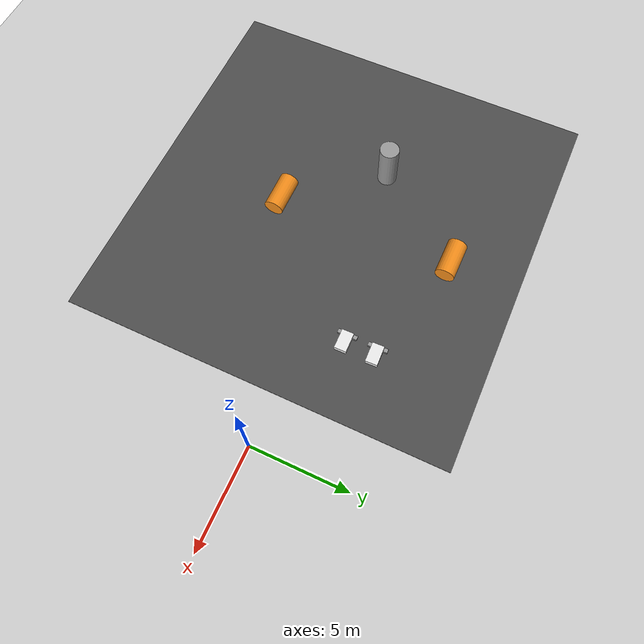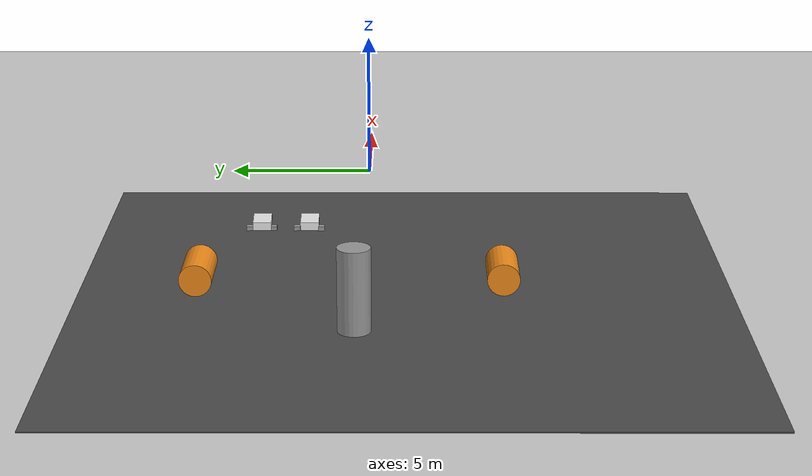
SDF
<sdf version="1.7">
 <world name="default">
  <model name="ground_plane">
   <static>1</static>
   <link name="link">
    <collision name="collision">
     <geometry><plane><normal>0 0 1</normal><size>100 100</size></plane></geometry>
     <surface><friction><ode><mu>100</mu><mu2>50</mu2></ode></friction></surface>
    </collision>
    <visual name="visual">
     <cast_shadows>0</cast_shadows>
     <geometry><plane><normal>0 0 1</normal><size>100 100</size></plane></geometry>
     <material>
      <script><uri>file://media/materials/scripts/gazebo.material</uri><name>Gazebo/Grey</name></script>
     </material>
    </visual>
   </link>
  </model>
  <model name="orange_cylinder_clone">
   <link name="link_0">
    <inertial>
     <mass>1</mass>
     <inertia><ixx>0.145833</ixx><ixy>0</ixy><ixz>0</ixz><iyy>0.145833</iyy><iyz>0</iyz><izz>0.125</izz></inertia>
    </inertial>
    <visual name="visual">
     <geometry><cylinder><radius>0.5</radius><length>1.88443</length></cylinder></geometry>
     <material>
      <lighting>1</lighting>
      <script><uri>file://media/materials/scripts/gazebo.material</uri><name>Gazebo/Orange</name></script>
      <shader type="pixel"><normal_map>__default__</normal_map></shader>
      <ambient>1 0.509 0.047 1</ambient>
      <diffuse>1 0.509 0.047 1</diffuse>
      <specular>0.5 0.5 0.5 1</specular>
      <emissive>0 0 0 1</emissive>
     </material>
    </visual>
    <collision name="collision">
     <geometry><cylinder><radius>0.5</radius><length>1.88443</length></cylinder></geometry>
     <surface>
      <friction>
       <ode><mu>1</mu><mu2>1</mu2><fdir1>0 0 0</fdir1><slip1>0</slip1><slip2>0</slip2></ode>
       <torsional>
        <coefficient>1</coefficient>
        <patch_radius>0</patch_radius>
        <surface_radius>0</surface_radius>
        <use_patch_radius>1</use_patch_radius>
        <ode><slip>0</slip></ode>
       </torsional>
      </friction>
      <bounce><restitution_coefficient>0</restitution_coefficient><threshold>1e+06</threshold></bounce>
      <contact>
       <collide_without_contact>0</collide_without_contact>
       <collide_without_contact_bitmask>1</collide_without_contact_bitmask>
       <collide_bitmask>1</collide_bitmask>
       <ode>
        <soft_cfm>0</soft_cfm>
        <soft_erp>0.2</soft_erp>
        <kp>1e+13</kp>
        <kd>1</kd>
        <max_vel>0.01</max_vel>
        <min_depth>0</min_depth>
       </ode>
       <bullet>
        <split_impulse>1</split_impulse>
        <split_impulse_penetration_threshold>-0.01</split_impulse_penetration_threshold>
        <soft_cfm>0</soft_cfm>
        <soft_erp>0.2</soft_erp>
        <kp>1e+13</kp>
        <kd>1</kd>
       </bullet>
      </contact>
     </surface>
    </collision>
   </link>
   <static>0</static>
   <pose>-12.1912 5.04645 0.590071 -1.5708 1.55143 -1.57632</pose>
  </model>
  <model name="orange_cylinder_clone_clone">
   <link name="link_0">
    <inertial>
     <mass>1</mass>
     <inertia><ixx>0.145833</ixx><ixy>0</ixy><ixz>0</ixz><iyy>0.145833</iyy><iyz>0</iyz><izz>0.125</izz></inertia>
    </inertial>
    <visual name="visual">
     <geometry><cylinder><radius>0.5</radius><length>1.88443</length></cylinder></geometry>
     <material>
      <lighting>1</lighting>
      <script><uri>file://media/materials/scripts/gazebo.material</uri><name>Gazebo/Orange</name></script>
      <shader type="pixel"><normal_map>__default__</normal_map></shader>
      <ambient>1 0.509 0.047 1</ambient>
      <diffuse>1 0.509 0.047 1</diffuse>
      <specular>0.5 0.5 0.5 1</specular>
      <emissive>0 0 0 1</emissive>
     </material>
    </visual>
    <collision name="collision">
     <geometry><cylinder><radius>0.5</radius><length>1.88443</length></cylinder></geometry>
     <surface>
      <friction>
       <ode><mu>1</mu><mu2>1</mu2><fdir1>0 0 0</fdir1><slip1>0</slip1><slip2>0</slip2></ode>
       <torsional>
        <coefficient>1</coefficient>
        <patch_radius>0</patch_radius>
        <surface_radius>0</surface_radius>
        <use_patch_radius>1</use_patch_radius>
        <ode><slip>0</slip></ode>
       </torsional>
      </friction>
      <bounce><restitution_coefficient>0</restitution_coefficient><threshold>1e+06</threshold></bounce>
      <contact>
       <collide_without_contact>0</collide_without_contact>
       <collide_without_contact_bitmask>1</collide_without_contact_bitmask>
       <collide_bitmask>1</collide_bitmask>
       <ode>
        <soft_cfm>0</soft_cfm>
        <soft_erp>0.2</soft_erp>
        <kp>1e+13</kp>
        <kd>1</kd>
        <max_vel>0.01</max_vel>
        <min_depth>0</min_depth>
       </ode>
       <bullet>
        <split_impulse>1</split_impulse>
        <split_impulse_penetration_threshold>-0.01</split_impulse_penetration_threshold>
        <soft_cfm>0</soft_cfm>
        <soft_erp>0.2</soft_erp>
        <kp>1e+13</kp>
        <kd>1</kd>
       </bullet>
      </contact>
     </surface>
    </collision>
   </link>
   <static>0</static>
   <pose>-12.1704 -4.30471 0.589029 -2.05384 1.53534 -2.05993</pose>
  </model>
  <model name="asphalt_plane">
   <static>1</static>
   <link name="link">
    <collision name="collision"><geometry><box><size>20 20 0.1</size></box></geometry></collision>
    <visual name="visual">
     <cast_shadows>0</cast_shadows>
     <geometry><box><size>20 20 0.1</size></box></geometry>
     <material>
      <script>
       <uri>model://asphalt_plane/materials/scripts</uri>
       <uri>model://asphalt_plane/materials/textures</uri>
       <name>vrc/asphalt</name>
      </script>
     </material>
    </visual>
   </link>
   <pose>-12.6134 -1.31009 -0.045514 0 -0 0</pose>
  </model>
  <model name="bed">
   <link name="link_1">
    <inertial>
     <mass>0.166557</mass>
     <inertia>
      <ixx>0.00618823</ixx>
      <ixy>0</ixy>
      <ixz>0</ixz>
      <iyy>0.0149173</iyy>
      <iyz>0</iyz>
      <izz>0.0190304</izz>
     </inertia>
    </inertial>
    <pose>0.268517 -0.007523 0.053425 0 -0 0</pose>
    <visual name="visual">
     <geometry><box><size>1 0.609172 0.273416</size></box></geometry>
     <material>
      <lighting>1</lighting>
      <script><uri>file://media/materials/scripts/gazebo.material</uri><name>Gazebo/White</name></script>
      <shader type="pixel"><normal_map>__default__</normal_map></shader>
      <ambient>1 1 1 1</ambient>
      <diffuse>1 1 1 1</diffuse>
      <specular>0 0 0 1</specular>
      <emissive>0 0 0 1</emissive>
     </material>
    </visual>
    <collision name="collision">
     <geometry><box><size>1 0.609172 0.273416</size></box></geometry>
     <surface>
      <friction>
       <ode><mu>1</mu><mu2>1</mu2><fdir1>0 0 0</fdir1><slip1>0</slip1><slip2>0</slip2></ode>
       <torsional>
        <coefficient>1</coefficient>
        <patch_radius>0</patch_radius>
        <surface_radius>0</surface_radius>
        <use_patch_radius>1</use_patch_radius>
        <ode><slip>0</slip></ode>
       </torsional>
      </friction>
      <bounce><restitution_coefficient>0</restitution_coefficient><threshold>1e+06</threshold></bounce>
      <contact>
       <collide_without_contact>0</collide_without_contact>
       <collide_without_contact_bitmask>1</collide_without_contact_bitmask>
       <collide_bitmask>1</collide_bitmask>
       <ode>
        <soft_cfm>0</soft_cfm>
        <soft_erp>0.2</soft_erp>
        <kp>1e+13</kp>
        <kd>1</kd>
        <max_vel>0.01</max_vel>
        <min_depth>0</min_depth>
       </ode>
       <bullet>
        <split_impulse>1</split_impulse>
        <split_impulse_penetration_threshold>-0.01</split_impulse_penetration_threshold>
        <soft_cfm>0</soft_cfm>
        <soft_erp>0.2</soft_erp>
        <kp>1e+13</kp>
        <kd>1</kd>
       </bullet>
      </contact>
     </surface>
    </collision>
   </link>
   <link name="link_2">
    <inertial>
     <mass>0.00661892</mass>
     <inertia>
      <ixx>3.651e-05</ixx>
      <ixy>0</ixy>
      <ixz>0</ixz>
      <iyy>3.722e-05</iyy>
      <iyz>0</iyz>
      <izz>4.631e-05</izz>
     </inertia>
    </inertial>
    <pose>-0.144333 -0.400103 -0.02691 0 -0 0</pose>
    <visual name="visual">
     <geometry><box><size>0.206441 0.203314 0.157681</size></box></geometry>
     <material>
      <lighting>1</lighting>
      <script><uri>file://media/materials/scripts/gazebo.material</uri><name>Gazebo/Grey</name></script>
      <shader type="pixel"><normal_map>__default__</normal_map></shader>
      <ambient>0 0 0 1</ambient>
      <diffuse>0 0 0 1</diffuse>
      <specular>0 0 0 1</specular>
      <emissive>0 0 0 1</emissive>
     </material>
    </visual>
    <collision name="collision">
     <geometry><box><size>0.206441 0.203314 0.157681</size></box></geometry>
     <surface>
      <friction>
       <ode><mu>1</mu><mu2>1</mu2><fdir1>0 0 0</fdir1><slip1>0</slip1><slip2>0</slip2></ode>
       <torsional>
        <coefficient>1</coefficient>
        <patch_radius>0</patch_radius>
        <surface_radius>0</surface_radius>
        <use_patch_radius>1</use_patch_radius>
        <ode><slip>0</slip></ode>
       </torsional>
      </friction>
      <bounce><restitution_coefficient>0</restitution_coefficient><threshold>1e+06</threshold></bounce>
      <contact>
       <collide_without_contact>0</collide_without_contact>
       <collide_without_contact_bitmask>1</collide_without_contact_bitmask>
       <collide_bitmask>1</collide_bitmask>
       <ode>
        <soft_cfm>0</soft_cfm>
        <soft_erp>0.2</soft_erp>
        <kp>1e+13</kp>
        <kd>1</kd>
        <max_vel>0.01</max_vel>
        <min_depth>0</min_depth>
       </ode>
       <bullet>
        <split_impulse>1</split_impulse>
        <split_impulse_penetration_threshold>-0.01</split_impulse_penetration_threshold>
        <soft_cfm>0</soft_cfm>
        <soft_erp>0.2</soft_erp>
        <kp>1e+13</kp>
        <kd>1</kd>
       </bullet>
      </contact>
     </surface>
    </collision>
   </link>
   <link name="link_2_clone">
    <inertial>
     <mass>0.00661892</mass>
     <inertia>
      <ixx>3.651e-05</ixx>
      <ixy>0</ixy>
      <ixz>0</ixz>
      <iyy>3.722e-05</iyy>
      <iyz>0</iyz>
      <izz>4.631e-05</izz>
     </inertia>
    </inertial>
    <pose>-0.124183 0.407627 -0.026515 0 -0 0</pose>
    <visual name="visual">
     <geometry><box><size>0.206441 0.203314 0.157681</size></box></geometry>
     <material>
      <lighting>1</lighting>
      <script><uri>file://media/materials/scripts/gazebo.material</uri><name>Gazebo/Grey</name></script>
      <shader type="pixel"><normal_map>__default__</normal_map></shader>
      <ambient>0 0 0 1</ambient>
      <diffuse>0 0 0 1</diffuse>
      <specular>0 0 0 1</specular>
      <emissive>0 0 0 1</emissive>
     </material>
    </visual>
    <collision name="collision">
     <geometry><box><size>0.206441 0.203314 0.157681</size></box></geometry>
     <surface>
      <friction>
       <ode><mu>1</mu><mu2>1</mu2><fdir1>0 0 0</fdir1><slip1>0</slip1><slip2>0</slip2></ode>
       <torsional>
        <coefficient>1</coefficient>
        <patch_radius>0</patch_radius>
        <surface_radius>0</surface_radius>
        <use_patch_radius>1</use_patch_radius>
        <ode><slip>0</slip></ode>
       </torsional>
      </friction>
      <bounce><restitution_coefficient>0</restitution_coefficient><threshold>1e+06</threshold></bounce>
      <contact>
       <collide_without_contact>0</collide_without_contact>
       <collide_without_contact_bitmask>1</collide_without_contact_bitmask>
       <collide_bitmask>1</collide_bitmask>
       <ode>
        <soft_cfm>0</soft_cfm>
        <soft_erp>0.2</soft_erp>
        <kp>1e+13</kp>
        <kd>1</kd>
        <max_vel>0.01</max_vel>
        <min_depth>0</min_depth>
       </ode>
       <bullet>
        <split_impulse>1</split_impulse>
        <split_impulse_penetration_threshold>-0.01</split_impulse_penetration_threshold>
        <soft_cfm>0</soft_cfm>
        <soft_erp>0.2</soft_erp>
        <kp>1e+13</kp>
        <kd>1</kd>
       </bullet>
      </contact>
     </surface>
    </collision>
   </link>
   <joint name="link_2_JOINT_0" type="revolute">
    <parent>link_2</parent>
    <child>link_1</child>
    <axis>
     <xyz>1 0 0</xyz>
     <limit>
      <lower>-1.79769e+308</lower>
      <upper>1.79769e+308</upper>
      <effort>-1</effort>
      <velocity>-1</velocity>
     </limit>
     <dynamics>
      <spring_reference>0</spring_reference>
      <spring_stiffness>0</spring_stiffness>
      <damping>0</damping>
     </dynamics>
    </axis>
    <physics>
     <ode><limit><cfm>0</cfm><erp>0.2</erp></limit><suspension><cfm>0</cfm><erp>0.2</erp></suspension></ode>
    </physics>
   </joint>
   <joint name="link_2_clone_JOINT_1" type="revolute">
    <parent>link_2_clone</parent>
    <child>link_1</child>
    <axis>
     <xyz>1 0 0</xyz>
     <limit>
      <lower>-1.79769e+308</lower>
      <upper>1.79769e+308</upper>
      <effort>-1</effort>
      <velocity>-1</velocity>
     </limit>
     <dynamics>
      <spring_reference>0</spring_reference>
      <spring_stiffness>0</spring_stiffness>
      <damping>0</damping>
     </dynamics>
    </axis>
    <physics>
     <ode><limit><cfm>0</cfm><erp>0.2</erp></limit><suspension><cfm>0</cfm><erp>0.2</erp></suspension></ode>
    </physics>
   </joint>
   <static>1</static>
   <pose>-6.50619 3.49112 0.093278 1.6e-05 -0 0.037709</pose>
  </model>
  <model name="bed_clone">
   <link name="link_1">
    <inertial>
     <mass>0.166557</mass>
     <inertia>
      <ixx>0.00618823</ixx>
      <ixy>0</ixy>
      <ixz>0</ixz>
      <iyy>0.0149173</iyy>
      <iyz>0</iyz>
      <izz>0.0190304</izz>
     </inertia>
    </inertial>
    <pose>0.268517 -0.007523 0.053425 0 -0 0</pose>
    <visual name="visual">
     <geometry><box><size>1 0.609172 0.273416</size></box></geometry>
     <material>
      <lighting>1</lighting>
      <script><uri>file://media/materials/scripts/gazebo.material</uri><name>Gazebo/White</name></script>
      <shader type="pixel"><normal_map>__default__</normal_map></shader>
      <ambient>1 1 1 1</ambient>
      <diffuse>1 1 1 1</diffuse>
      <specular>0 0 0 1</specular>
      <emissive>0 0 0 1</emissive>
     </material>
    </visual>
    <collision name="collision">
     <geometry><box><size>1 0.609172 0.273416</size></box></geometry>
     <surface>
      <friction>
       <ode><mu>1</mu><mu2>1</mu2><fdir1>0 0 0</fdir1><slip1>0</slip1><slip2>0</slip2></ode>
       <torsional>
        <coefficient>1</coefficient>
        <patch_radius>0</patch_radius>
        <surface_radius>0</surface_radius>
        <use_patch_radius>1</use_patch_radius>
        <ode><slip>0</slip></ode>
       </torsional>
      </friction>
      <bounce><restitution_coefficient>0</restitution_coefficient><threshold>1e+06</threshold></bounce>
      <contact>
       <collide_without_contact>0</collide_without_contact>
       <collide_without_contact_bitmask>1</collide_without_contact_bitmask>
       <collide_bitmask>1</collide_bitmask>
       <ode>
        <soft_cfm>0</soft_cfm>
        <soft_erp>0.2</soft_erp>
        <kp>1e+13</kp>
        <kd>1</kd>
        <max_vel>0.01</max_vel>
        <min_depth>0</min_depth>
       </ode>
       <bullet>
        <split_impulse>1</split_impulse>
        <split_impulse_penetration_threshold>-0.01</split_impulse_penetration_threshold>
        <soft_cfm>0</soft_cfm>
        <soft_erp>0.2</soft_erp>
        <kp>1e+13</kp>
        <kd>1</kd>
       </bullet>
      </contact>
     </surface>
    </collision>
   </link>
   <link name="link_2">
    <inertial>
     <mass>0.00661892</mass>
     <inertia>
      <ixx>3.651e-05</ixx>
      <ixy>0</ixy>
      <ixz>0</ixz>
      <iyy>3.722e-05</iyy>
      <iyz>0</iyz>
      <izz>4.631e-05</izz>
     </inertia>
    </inertial>
    <pose>-0.144333 -0.400103 -0.02691 0 -0 0</pose>
    <visual name="visual">
     <geometry><box><size>0.206441 0.203314 0.157681</size></box></geometry>
     <material>
      <lighting>1</lighting>
      <script><uri>file://media/materials/scripts/gazebo.material</uri><name>Gazebo/Grey</name></script>
      <shader type="pixel"><normal_map>__default__</normal_map></shader>
      <ambient>0 0 0 1</ambient>
      <diffuse>0 0 0 1</diffuse>
      <specular>0 0 0 1</specular>
      <emissive>0 0 0 1</emissive>
     </material>
    </visual>
    <collision name="collision">
     <geometry><box><size>0.206441 0.203314 0.157681</size></box></geometry>
     <surface>
      <friction>
       <ode><mu>1</mu><mu2>1</mu2><fdir1>0 0 0</fdir1><slip1>0</slip1><slip2>0</slip2></ode>
       <torsional>
        <coefficient>1</coefficient>
        <patch_radius>0</patch_radius>
        <surface_radius>0</surface_radius>
        <use_patch_radius>1</use_patch_radius>
        <ode><slip>0</slip></ode>
       </torsional>
      </friction>
      <bounce><restitution_coefficient>0</restitution_coefficient><threshold>1e+06</threshold></bounce>
      <contact>
       <collide_without_contact>0</collide_without_contact>
       <collide_without_contact_bitmask>1</collide_without_contact_bitmask>
       <collide_bitmask>1</collide_bitmask>
       <ode>
        <soft_cfm>0</soft_cfm>
        <soft_erp>0.2</soft_erp>
        <kp>1e+13</kp>
        <kd>1</kd>
        <max_vel>0.01</max_vel>
        <min_depth>0</min_depth>
       </ode>
       <bullet>
        <split_impulse>1</split_impulse>
        <split_impulse_penetration_threshold>-0.01</split_impulse_penetration_threshold>
        <soft_cfm>0</soft_cfm>
        <soft_erp>0.2</soft_erp>
        <kp>1e+13</kp>
        <kd>1</kd>
       </bullet>
      </contact>
     </surface>
    </collision>
   </link>
   <link name="link_2_clone">
    <inertial>
     <mass>0.00661892</mass>
     <inertia>
      <ixx>3.651e-05</ixx>
      <ixy>0</ixy>
      <ixz>0</ixz>
      <iyy>3.722e-05</iyy>
      <iyz>0</iyz>
      <izz>4.631e-05</izz>
     </inertia>
    </inertial>
    <pose>-0.124183 0.407627 -0.026515 0 -0 0</pose>
    <visual name="visual">
     <geometry><box><size>0.206441 0.203314 0.157681</size></box></geometry>
     <material>
      <lighting>1</lighting>
      <script><uri>file://media/materials/scripts/gazebo.material</uri><name>Gazebo/Grey</name></script>
      <shader type="pixel"><normal_map>__default__</normal_map></shader>
      <ambient>0 0 0 1</ambient>
      <diffuse>0 0 0 1</diffuse>
      <specular>0 0 0 1</specular>
      <emissive>0 0 0 1</emissive>
     </material>
    </visual>
    <collision name="collision">
     <geometry><box><size>0.206441 0.203314 0.157681</size></box></geometry>
     <surface>
      <friction>
       <ode><mu>1</mu><mu2>1</mu2><fdir1>0 0 0</fdir1><slip1>0</slip1><slip2>0</slip2></ode>
       <torsional>
        <coefficient>1</coefficient>
        <patch_radius>0</patch_radius>
        <surface_radius>0</surface_radius>
        <use_patch_radius>1</use_patch_radius>
        <ode><slip>0</slip></ode>
       </torsional>
      </friction>
      <bounce><restitution_coefficient>0</restitution_coefficient><threshold>1e+06</threshold></bounce>
      <contact>
       <collide_without_contact>0</collide_without_contact>
       <collide_without_contact_bitmask>1</collide_without_contact_bitmask>
       <collide_bitmask>1</collide_bitmask>
       <ode>
        <soft_cfm>0</soft_cfm>
        <soft_erp>0.2</soft_erp>
        <kp>1e+13</kp>
        <kd>1</kd>
        <max_vel>0.01</max_vel>
        <min_depth>0</min_depth>
       </ode>
       <bullet>
        <split_impulse>1</split_impulse>
        <split_impulse_penetration_threshold>-0.01</split_impulse_penetration_threshold>
        <soft_cfm>0</soft_cfm>
        <soft_erp>0.2</soft_erp>
        <kp>1e+13</kp>
        <kd>1</kd>
       </bullet>
      </contact>
     </surface>
    </collision>
   </link>
   <joint name="link_2_JOINT_0" type="revolute">
    <parent>link_2</parent>
    <child>link_1</child>
    <axis>
     <xyz>1 0 0</xyz>
     <limit>
      <lower>-1.79769e+308</lower>
      <upper>1.79769e+308</upper>
      <effort>-1</effort>
      <velocity>-1</velocity>
     </limit>
     <dynamics>
      <spring_reference>0</spring_reference>
      <spring_stiffness>0</spring_stiffness>
      <damping>0</damping>
     </dynamics>
    </axis>
    <physics>
     <ode><limit><cfm>0</cfm><erp>0.2</erp></limit><suspension><cfm>0</cfm><erp>0.2</erp></suspension></ode>
    </physics>
   </joint>
   <joint name="link_2_clone_JOINT_1" type="revolute">
    <parent>link_2_clone</parent>
    <child>link_1</child>
    <axis>
     <xyz>1 0 0</xyz>
     <limit>
      <lower>-1.79769e+308</lower>
      <upper>1.79769e+308</upper>
      <effort>-1</effort>
      <velocity>-1</velocity>
     </limit>
     <dynamics>
      <spring_reference>0</spring_reference>
      <spring_stiffness>0</spring_stiffness>
      <damping>0</damping>
     </dynamics>
    </axis>
    <physics>
     <ode><limit><cfm>0</cfm><erp>0.2</erp></limit><suspension><cfm>0</cfm><erp>0.2</erp></suspension></ode>
    </physics>
   </joint>
   <static>1</static>
   <pose>-6.51457 1.90124 0.093283 0 -0 0.014289</pose>
  </model>
  <model name="unit_cylinder">
   <pose>-15.6985 0.167501 1.29158 0 -0 0.000487</pose>
   <link name="link">
    <inertial>
     <mass>1</mass>
     <inertia><ixx>0.145833</ixx><ixy>0</ixy><ixz>0</ixz><iyy>0.145833</iyy><iyz>0</iyz><izz>0.125</izz></inertia>
    </inertial>
    <collision name="collision">
     <geometry><cylinder><radius>0.5</radius><length>2.56317</length></cylinder></geometry>
    </collision>
    <visual name="visual">
     <geometry><cylinder><radius>0.5</radius><length>2.56317</length></cylinder></geometry>
     <material>
      <script><name>Gazebo/Grey</name><uri>file://media/materials/scripts/gazebo.material</uri></script>
     </material>
    </visual>
   </link>
  </model>
 </world>
</sdf>
